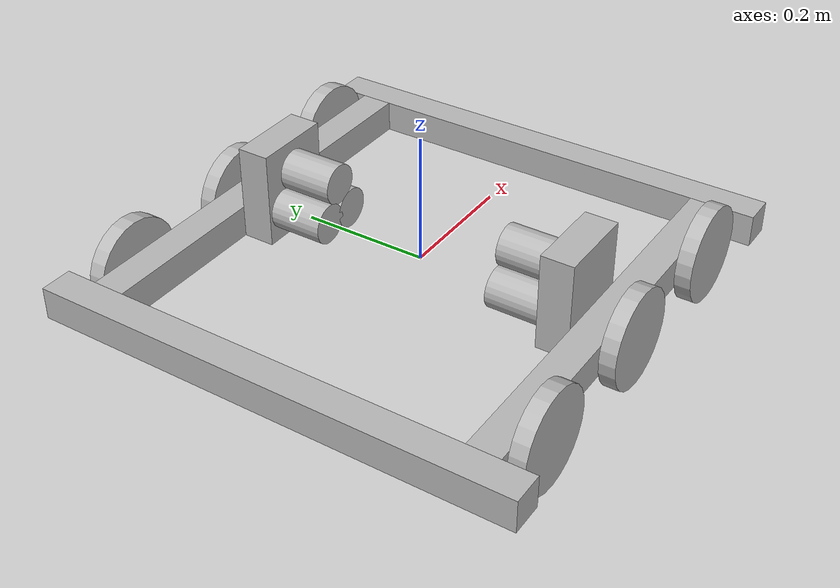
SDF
<?xml version='1.0'?>

<sdf version='1.6'>
    <model name="Drivetrain">
        <static>false</static>
        <link name="left_tube">
            <pose>0 0.3048 0 0 0 0 0</pose>
            <collision name="left_tube_collision">
                <geometry>
                    <box>
                        <size>0.6604 0.0508 0.0508 0 0 0</size>
                    </box>
                </geometry>
            </collision>
            <visual name="left_tube_visual">
                <geometry>
                    <box>
                        <size>0.6604 0.0508 0.0508 0 0 0</size>
                    </box>
                </geometry>
            </visual>
        </link>
        <link name="right_tube">
            <pose>0 -0.3048 0 0 0 0 0</pose>
            <collision name="right_tube_collision">
                <geometry>
                    <box>
                        <size>0.6604 0.0508 0.0508 0 0 0</size>
                    </box>
                </geometry>
            </collision>
            <visual name="right_tube_visual">
                <geometry>
                    <box>
                        <size>0.6604 0.0508 0.0508 0 0 0</size>
                    </box>
                </geometry>
            </visual>
        </link>
        <link name="top_tube">
            <pose>0.3556 0 0 0 0 0</pose>
            <collision name="top_tube_collision">
                <geometry>
                    <box>
                        <size>0.0508 0.762 0.0508 0 0 0</size>
                    </box>
                </geometry>
            </collision>
            <visual name="top_tube_visual">
                <geometry>
                    <box>
                        <size>0.0508 0.762 0.0508 0 0 0</size>
                    </box>
                </geometry>
            </visual>
        </link>
        <link name="bottom_tube">
            <pose>-0.3556 0 0 0 0 0</pose>
            <collision name="bottom_tube_collision">
                <geometry>
                    <box>
                        <size>0.0508 0.762 0.0508 0 0 0</size>
                    </box>
                </geometry>
            </collision>
            <visual name="bottom_tube_visual">
                <geometry>
                    <box>
                        <size>0.0508 0.762 0.0508 0 0 0</size>
                    </box>
                </geometry>
            </visual>
        </link>
        <joint type="fixed" name="left_top_tube_joint">
            <pose>0.3302 0 0.0254 0 0 0</pose>
            <child>left_tube</child>
            <parent>top_tube</parent>
        </joint>
        <joint type="fixed" name="right_top_tube_joint">
            <pose>0.3302 0 0.0254 0 0 0</pose>
            <child>right_tube</child>
            <parent>top_tube</parent>
        </joint>
        <joint type="fixed" name="left_bottom_tube_joint">
            <pose>-0.3302 0 0.0254 0 0 0</pose>
            <child>left_tube</child>
            <parent>bottom_tube</parent>
        </joint>
        <joint type="fixed" name="right_bottom_tube_joint">
            <pose>-0.3302 0 0.0254 0 0 0</pose>
            <child>right_tube</child>
            <parent>bottom_tube</parent>
        </joint>
        <include>
            <uri>model://GazeboSim2019/wheel</uri>
            <pose>0.2413 0.3429 0 0 0 0</pose>
            <name>front_left_wheel</name>
        </include>
        <include>
            <uri>model://GazeboSim2019/wheel</uri>
            <pose>0 0.3429 0 0 0 0</pose>
            <name>middle_left_wheel</name>
        </include>
        <include>
            <uri>model://GazeboSim2019/wheel</uri>
            <pose>-0.2413 0.3429 0 0 0 0</pose>
            <name>back_left_wheel</name>
        </include>
        <include>
            <uri>model://GazeboSim2019/wheel</uri>
            <pose>0.2413 -0.3429 0 0 0 0</pose>
            <name>front_right_wheel</name>
        </include>
        <include>
            <uri>model://GazeboSim2019/wheel</uri>
            <pose>0 -0.3429 0 0 0 0</pose>
            <name>middle_right_wheel</name>
        </include>
        <include>
            <uri>model://GazeboSim2019/wheel</uri>
            <pose>-0.2413 -0.3429 0 0 0 0</pose>
            <name>back_right_wheel</name>
        </include>
        <joint name="front_left_wheel_joint" type="revolute">
            <pose>0 0 0.0127 0 0 0</pose>
            <child>front_left_wheel::wheel</child>
            <parent>left_tube</parent>
            <axis>
                <xyz>0.0 0.0 -1.0</xyz>
            </axis>
        </joint>
        <joint name="middle_left_wheel_joint" type="revolute">
            <pose>0 0 0.0127 0 0 0</pose>
            <child>middle_left_wheel::wheel</child>
            <parent>left_tube</parent>
            <axis>
                <xyz>0.0 0.0 -1.0</xyz>
            </axis>
        </joint>
        <joint name="back_left_wheel_joint" type="revolute">
            <pose>0 0 0.0127 0 0 0</pose>
            <child>back_left_wheel::wheel</child>
            <parent>left_tube</parent>
            <axis>
                <xyz>0.0 0.0 -1.0</xyz>
            </axis>
        </joint>
        <joint name="front_right_wheel_joint" type="revolute">
            <pose>0 0 -0.0127 0 0 0</pose>
            <child>front_right_wheel::wheel</child>
            <parent>right_tube</parent>
            <axis>
                <xyz>0.0 0.0 1.0</xyz>
            </axis>
        </joint>
        <joint name="middle_right_wheel_joint" type="revolute">
            <pose>0 0 -0.0127 0 0 0</pose>
            <child>middle_right_wheel::wheel</child>
            <parent>right_tube</parent>
            <axis>
                <xyz>0.0 0.0 1.0</xyz>
            </axis>
        </joint>
        <joint name="back_right_wheel_joint" type="revolute">
            <pose>0 0 -0.0127 0 0 0</pose>
            <child>back_right_wheel::wheel</child>
            <parent>right_tube</parent>
            <axis>
                <xyz>0.0 0.0 1.0</xyz>
            </axis>
        </joint>
        <include>
            <uri>model://GazeboSim2019/drivetrain_gearbox</uri>
            <pose>0 0.2794 0 0 0 0</pose>
            <name>right_gearbox</name>
        </include>
        <include>
            <uri>model://GazeboSim2019/drivetrain_gearbox</uri>
            <pose>0 -0.2794 0 0 0 3.141592653589793</pose>
            <name>left_gearbox</name>
        </include>
        <joint name="left_gearbox_joint" type="fixed">
            <child>left_gearbox::gearbox</child>
            <parent>left_tube</parent>
            <pose>0 0 0 0 0 0</pose>
        </joint>
        <joint name="right_gearbox_joint" type="fixed">
            <child>right_gearbox::gearbox</child>
            <parent>right_tube</parent>
            <pose>0 0 0 0 0 0</pose>
        </joint>
        <joint name="front_left_wheel_gearbox_joint" type="gearbox">
            <child>front_left_wheel::wheel</child>
            <parent>left_gearbox::output_gear</parent>
            <pose>0 0 0 0 0 0</pose>
            <gearbox_ratio>1</gearbox_ratio>
            <gearbox_reference_body>left_tube</gearbox_reference_body>
            <axis>
                <use_parent_model_frame>true</use_parent_model_frame>
                <xyz>0.0 -1.0 0.0</xyz>
            </axis>
            <axis2>
                <use_parent_model_frame>true</use_parent_model_frame>
                <xyz>0.0 1.0 0.0</xyz>
            </axis2>
        </joint>
        <joint name="middle_left_wheel_gearbox_joint" type="gearbox">
            <child>middle_left_wheel::wheel</child>
            <parent>left_gearbox::output_gear</parent>
            <pose>0 0 0 0 0 0</pose>
            <gearbox_ratio>1</gearbox_ratio>
            <gearbox_reference_body>left_tube</gearbox_reference_body>
            <axis>
                <use_parent_model_frame>true</use_parent_model_frame>
                <xyz>0.0 -1.0 0.0</xyz>
            </axis>
            <axis2>
                <use_parent_model_frame>true</use_parent_model_frame>
                <xyz>0.0 1.0 0.0</xyz>
            </axis2>
        </joint>
        <joint name="back_left_wheel_gearbox_joint" type="gearbox">
            <child>back_left_wheel::wheel</child>
            <parent>left_gearbox::output_gear</parent>
            <pose>0 0 0 0 0 0</pose>
            <gearbox_ratio>1</gearbox_ratio>
            <gearbox_reference_body>left_tube</gearbox_reference_body>
            <axis>
                <use_parent_model_frame>true</use_parent_model_frame>
                <xyz>0.0 -1.0 0.0</xyz>
            </axis>
            <axis2>
                <use_parent_model_frame>true</use_parent_model_frame>
                <xyz>0.0 1.0 0.0</xyz>
            </axis2>
        </joint>
        <joint name="front_right_wheel_gearbox_joint" type="gearbox">
            <child>front_right_wheel::wheel</child>
            <parent>right_gearbox::output_gear</parent>
            <pose>0 0 0 0 0 0</pose>
            <gearbox_ratio>1</gearbox_ratio>
            <gearbox_reference_body>right_tube</gearbox_reference_body>
            <axis>
                <use_parent_model_frame>true</use_parent_model_frame>
                <xyz>0.0 -1.0 0.0</xyz>
            </axis>
            <axis2>
                <use_parent_model_frame>true</use_parent_model_frame>
                <xyz>0.0 -1.0 0.0</xyz>
            </axis2>
        </joint>
        <joint name="middle_right_wheel_gearbox_joint" type="gearbox">
            <child>middle_right_wheel::wheel</child>
            <parent>right_gearbox::output_gear</parent>
            <pose>0 0 0 0 0 0</pose>
            <gearbox_ratio>1</gearbox_ratio>
            <gearbox_reference_body>right_tube</gearbox_reference_body>
            <axis>
                <use_parent_model_frame>true</use_parent_model_frame>
                <xyz>0.0 -1.0 0.0</xyz>
            </axis>
            <axis2>
                <use_parent_model_frame>true</use_parent_model_frame>
                <xyz>0.0 -1.0 0.0</xyz>
            </axis2>
        </joint>
        <joint name="back_right_wheel_gearbox_joint" type="gearbox">
            <child>back_right_wheel::wheel</child>
            <parent>right_gearbox::output_gear</parent>
            <pose>0 0 0 0 0 0</pose>
            <gearbox_ratio>1</gearbox_ratio>
            <gearbox_reference_body>right_tube</gearbox_reference_body>
            <axis>
                <use_parent_model_frame>true</use_parent_model_frame>
                <xyz>0.0 -1.0 0.0</xyz>
            </axis>
            <axis2>
                <use_parent_model_frame>true</use_parent_model_frame>
                <xyz>0.0 -1.0 0.0</xyz>
            </axis2>
        </joint>
    </model>
</sdf>

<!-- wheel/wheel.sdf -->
<sdf version='1.6'>
    <model name="Wheel">
        <link name="wheel">
            <pose>0 0 0 1.5707963267948966 0 0</pose>
            <collision name="wheel_collision">
                <geometry>
                    <cylinder>
                        <radius>0.07619999999999999</radius>
                        <length>0.0254</length>
                    </cylinder>
                </geometry>
            </collision>
            <visual name="wheel_visual">
                <geometry>
                    <cylinder>
                        <radius>0.07619999999999999</radius>
                        <length>0.0254</length>
                    </cylinder>
                </geometry>
            </visual>
        </link>
    </model>
</sdf>

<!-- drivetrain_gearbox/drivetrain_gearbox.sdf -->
<sdf version='1.6'>
    <model name="Drivetrain_Gearbox">
        <link name="gearbox">
            <pose>0 -0.0254 0.05079999999999999 0 0 0</pose>
            <collision name="gearbox_collision">
                <geometry>
                    <box>
                        <size>0.127 0.0508 0.15239999999999998 0 0 0</size>
                    </box>
                </geometry>
            </collision>
            <visual name="gearbox_visual">
                <geometry>
                    <box>
                        <size>0.127 0.0508 0.15239999999999998 0 0 0</size>
                    </box>
                </geometry>
            </visual>
        </link>
        <link name="output_gear">
            <pose> 0 -0.0254 0 1.5707963267948966 0 0</pose>
            <collision name="output_gear_collision">
                <geometry>
                    <cylinder>
                        <radius>0.0254</radius>
                        <length>0.00635</length>
                    </cylinder>
                </geometry>
            </collision>
            <visual name="output_gear_visual">
                <geometry>
                    <cylinder>
                        <radius>0.0254</radius>
                        <length>0.00635</length>
                    </cylinder>
                </geometry>
            </visual>
        </link>
        <joint name="output_gear_joint" type="revolute">
            <pose> 0 0 0 1.5707963267948966 0 0</pose>
            <child>output_gear</child>
            <parent>gearbox</parent>
            <axis>
                <use_parent_model_frame>true</use_parent_model_frame>
                <xyz>0.0 1.0 0.0</xyz>
            </axis>
        </joint>
        <include>
            <uri>model://GazeboSim2019/mini_cim</uri>
            <pose>0 -0.0508 0.07829630657015593 4.71238898038469 0 0</pose>
            <name>middle_cim</name>
        </include>
        <include>
            <uri>model://GazeboSim2019/mini_cim</uri>
            <pose>0.027496306570155928 -0.0508 0.02330369342984407 4.71238898038469 0 0</pose>
            <name>back_cim</name>
        </include>
        <include>
            <uri>model://GazeboSim2019/mini_cim</uri>
            <pose>-0.027496306570155928 -0.0508 0.02330369342984407 4.71238898038469 0 0</pose>
            <name>front_cim</name>
        </include>
        <joint name="front_cim_output_joint" type="gearbox">
            <child>output_gear</child>
            <parent>front_cim::motor_shaft</parent>
            <pose>0 0 0 0 0 0</pose>
            <gearbox_ratio>1</gearbox_ratio>
            <gearbox_reference_body>gearbox</gearbox_reference_body>
            <axis>
                <use_parent_model_frame>true</use_parent_model_frame>
                <xyz>0.0 -1.0 0.0</xyz>
            </axis>
            <axis2>
                <use_parent_model_frame>true</use_parent_model_frame>
                <xyz>0.0 1.0 0.0</xyz>
            </axis2>
        </joint>
        <joint name="middle_cim_output_joint" type="gearbox">
            <child>output_gear</child>
            <parent>middle_cim::motor_shaft</parent>
            <pose>0 0 0 0 0 0</pose>
            <gearbox_ratio>1</gearbox_ratio>
            <gearbox_reference_body>gearbox</gearbox_reference_body>
            <axis>
                <use_parent_model_frame>true</use_parent_model_frame>
                <xyz>0.0 -1.0 0.0</xyz>
            </axis>
            <axis2>
                <use_parent_model_frame>true</use_parent_model_frame>
                <xyz>0.0 1.0 0.0</xyz>
            </axis2>
        </joint>
        <joint name="back_cim_output_joint" type="gearbox">
            <child>output_gear</child>
            <parent>back_cim::motor_shaft</parent>
            <pose>0 0 0 0 0 0</pose>
            <gearbox_ratio>1</gearbox_ratio>
            <gearbox_reference_body>gearbox</gearbox_reference_body>
            <axis>
                <use_parent_model_frame>true</use_parent_model_frame>
                <xyz>0.0 -1.0 0.0</xyz>
            </axis>
            <axis2>
                <use_parent_model_frame>true</use_parent_model_frame>
                <xyz>0.0 1.0 0.0</xyz>
            </axis2>
        </joint>
        <joint type="fixed" name="middle_cim_joint">
            <pose>0 0 0.042671999999999995 0 0 0</pose>
            <child>middle_cim::motor</child>
            <parent>gearbox</parent>
        </joint>
        <joint type="fixed" name="back_cim_joint">
            <pose>0 0 0.042671999999999995 0 0 0</pose>
            <child>back_cim::motor</child>
            <parent>gearbox</parent>
        </joint>
        <joint type="fixed" name="front_cim_joint">
            <pose>0 0 0.042671999999999995 0 0 0</pose>
            <child>front_cim::motor</child>
            <parent>gearbox</parent>
        </joint>
    </model>
</sdf>

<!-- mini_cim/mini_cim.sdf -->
<sdf version='1.6'>
    <model name="Mini_CIM">
        <link name="motor">
            <pose>0 0 -0.042671999999999995 0 0 0</pose>
            <collision name="motor_collision">
                <geometry>
                    <cylinder>
                        <radius>0.03175</radius>
                        <length>0.08534399999999999</length>
                    </cylinder>
                </geometry>
            </collision>
            <visual name="motor_visual">
                <geometry>
                    <cylinder>
                        <radius>0.03175</radius>
                        <length>0.08534399999999999</length>
                    </cylinder>
                </geometry>
            </visual>
        </link>
        <link name="motor_shaft">
            <pose>0 0 0.0178 0 0 0</pose>
            <collision name="motor_shaft_collision">
                <geometry>
                    <cylinder>
                        <radius>0.008</radius>
                        <length>0.0356</length>
                    </cylinder>
                </geometry>
            </collision>
            <visual name="motor_shaft_visual">
                <geometry>
                    <cylinder>
                        <radius>0.008</radius>
                        <length>0.0356</length>
                    </cylinder>
                </geometry>
            </visual>
        </link>
        <joint name="motor_shaft_to_motor" type="revolute">
            <pose>0 0 -0.0178 0 0 0</pose>
            <child>motor_shaft</child>
            <parent>motor</parent>
            <axis>
                <use_parent_model_frame>true</use_parent_model_frame>
                <xyz>0.0 0.0 1.0</xyz>
            </axis>
        </joint>
    </model>
</sdf>
